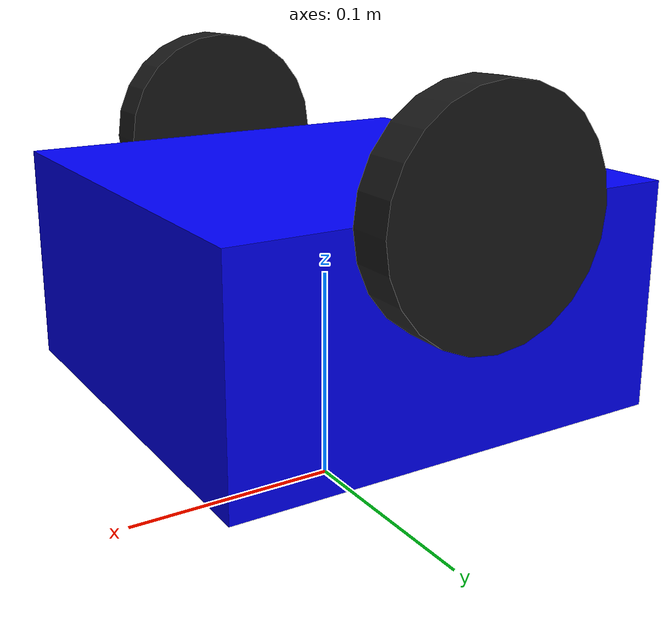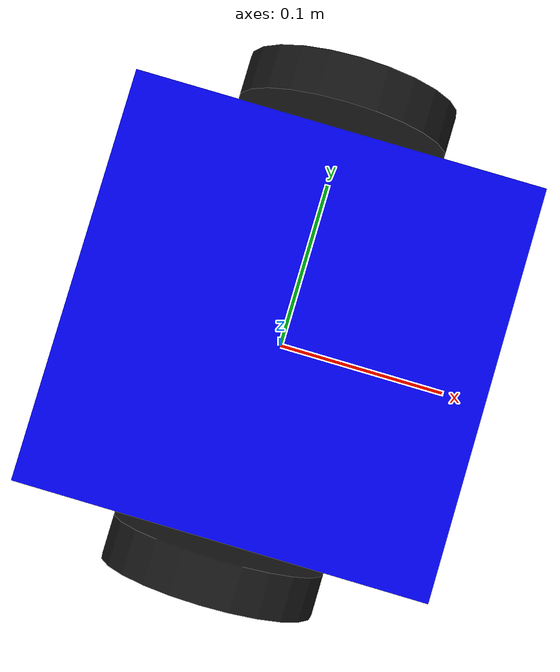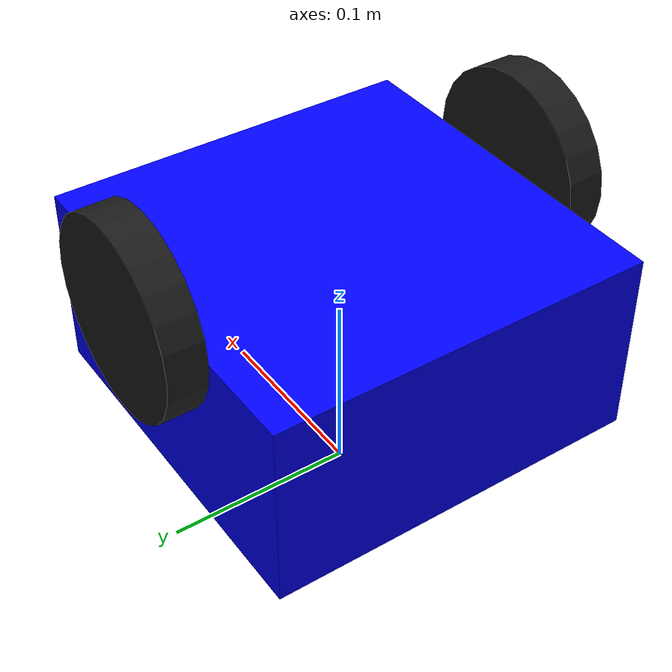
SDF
<?xml version="1.0" ?>
<sdf version="1.7">
  <model name="farm_robot">
    <pose>0 0 0.1 0 0 0</pose>
    <link name="base_link">
      <inertial>
        <pose>0 0 0.05 0 0 0</pose>
        <mass>1.0</mass>
        <inertia>
          <ixx>0.0083</ixx>
          <ixy>0.0</ixy>
          <ixz>0.0</ixz>
          <iyy>0.0083</iyy>
          <iyz>0.0</iyz>
          <izz>0.0083</izz>
        </inertia>
      </inertial>
      <collision name="base_collision">
        <geometry>
          <box>
            <size>0.2 0.2 0.1</size>
          </box>
        </geometry>
      </collision>
      <visual name="base_visual">
        <geometry>
          <box>
            <size>0.2 0.2 0.1</size>
          </box>
        </geometry>
        <material>
          <ambient>0.0 0.0 1.0 1</ambient>
          <diffuse>0.0 0.0 1.0 1</diffuse>
          <specular>0.0 0.0 1.0 1</specular>
        </material>
      </visual>
    </link>

    <link name="left_wheel_link">
      <pose>0 0.11 0.05 0 1.5707 1.5707</pose>
      <inertial>
        <mass>0.1</mass>
        <inertia>
          <ixx>0.000083</ixx>
          <ixy>0.0</ixy>
          <ixz>0.0</ixz>
          <iyy>0.000083</iyy>
          <iyz>0.0</iyz>
          <izz>0.000083</izz>
        </inertia>
      </inertial>
      <collision name="left_wheel_collision">
        <geometry>
          <cylinder>
            <radius>0.05</radius>
            <length>0.02</length>
          </cylinder>
        </geometry>
      </collision>
      <visual name="left_wheel_visual">
        <geometry>
          <cylinder>
            <radius>0.05</radius>
            <length>0.02</length>
          </cylinder>
        </geometry>
        <material>
          <ambient>0.1 0.1 0.1 1</ambient>
          <diffuse>0.1 0.1 0.1 1</diffuse>
          <specular>0.1 0.1 0.1 1</specular>
        </material>
      </visual>
    </link>

    <link name="right_wheel_link">
      <pose>0 -0.11 0.05 0 1.5707 1.5707</pose>
      <inertial>
        <mass>0.1</mass>
        <inertia>
          <ixx>0.000083</ixx>
          <ixy>0.0</ixy>
          <ixz>0.0</ixz>
          <iyy>0.000083</iyy>
          <iyz>0.0</iyz>
          <izz>0.000083</izz>
        </inertia>
      </inertial>
      <collision name="right_wheel_collision">
        <geometry>
          <cylinder>
            <radius>0.05</radius>
            <length>0.02</length>
          </cylinder>
        </geometry>
      </collision>
      <visual name="right_wheel_visual">
        <geometry>
          <cylinder>
            <radius>0.05</radius>
            <length>0.02</length>
          </cylinder>
        </geometry>
        <material>
          <ambient>0.1 0.1 0.1 1</ambient>
          <diffuse>0.1 0.1 0.1 1</diffuse>
          <specular>0.1 0.1 0.1 1</specular>
        </material>
      </visual>
    </link>

    <joint name="left_wheel_joint" type="revolute">
      <parent>base_link</parent>
      <child>left_wheel_link</child>
      <axis>
        <xyz>0 1 0</xyz>
      </axis>
    </joint>

    <joint name="right_wheel_joint" type="revolute">
      <parent>base_link</parent>
      <child>right_wheel_link</child>
      <axis>
        <xyz>0 1 0</xyz>
      </axis>
    </joint>

    <plugin name="differential_drive_controller" filename="libgazebo_ros_diff_drive.so">
      <ros>
        <namespace>/</namespace>
        <remapping>cmd_vel:=cmd_vel</remapping>
        <remapping>odom:=odom</remapping>
      </ros>
      <left_joint>left_wheel_joint</left_joint>
      <right_joint>right_wheel_joint</right_joint>
      <wheel_separation>0.22</wheel_separation>
      <wheel_radius>0.05</wheel_radius>
      <wheel_torque>0.2</wheel_torque>
      <publish_odom>true</publish_odom>
      <publish_odom_tf>true</publish_odom_tf>
      <publish_wheel_tf>true</publish_wheel_tf>
      <always_on>true</always_on>
      <update_rate>100</update_rate>
    </plugin>

  </model>
</sdf>
